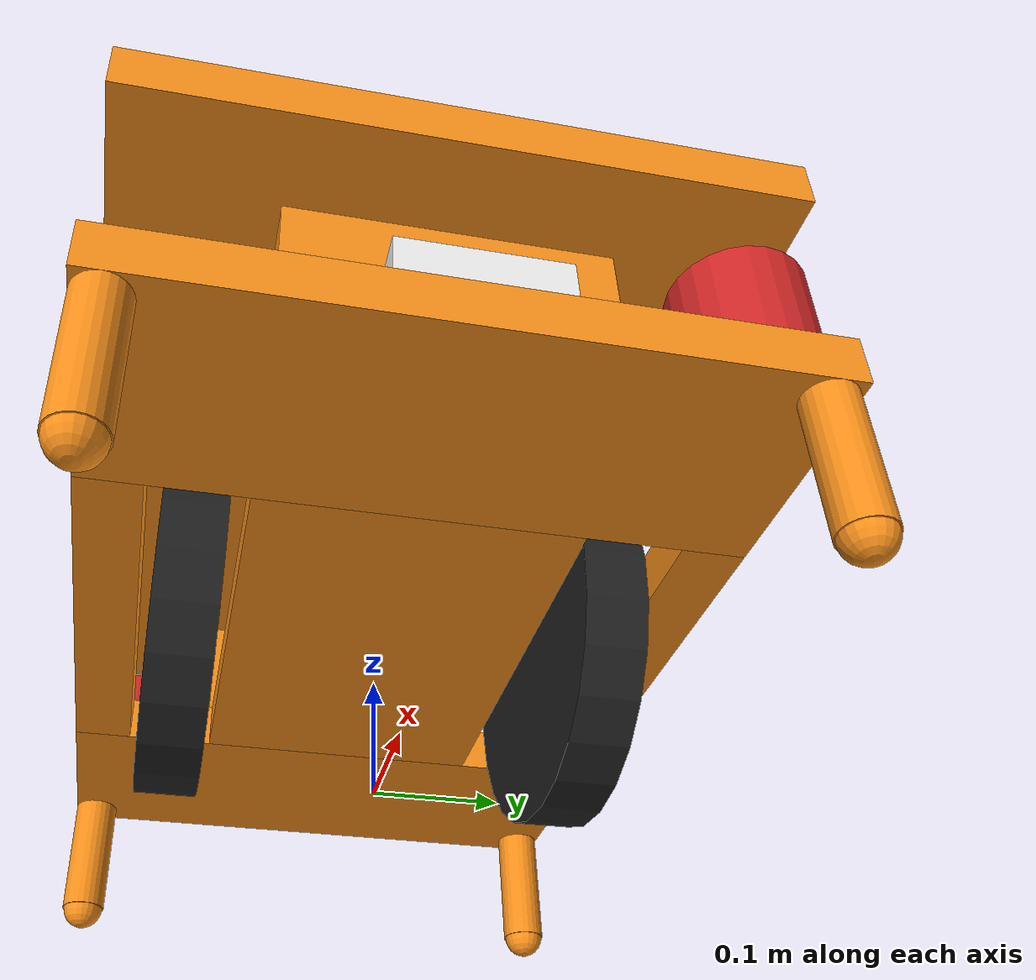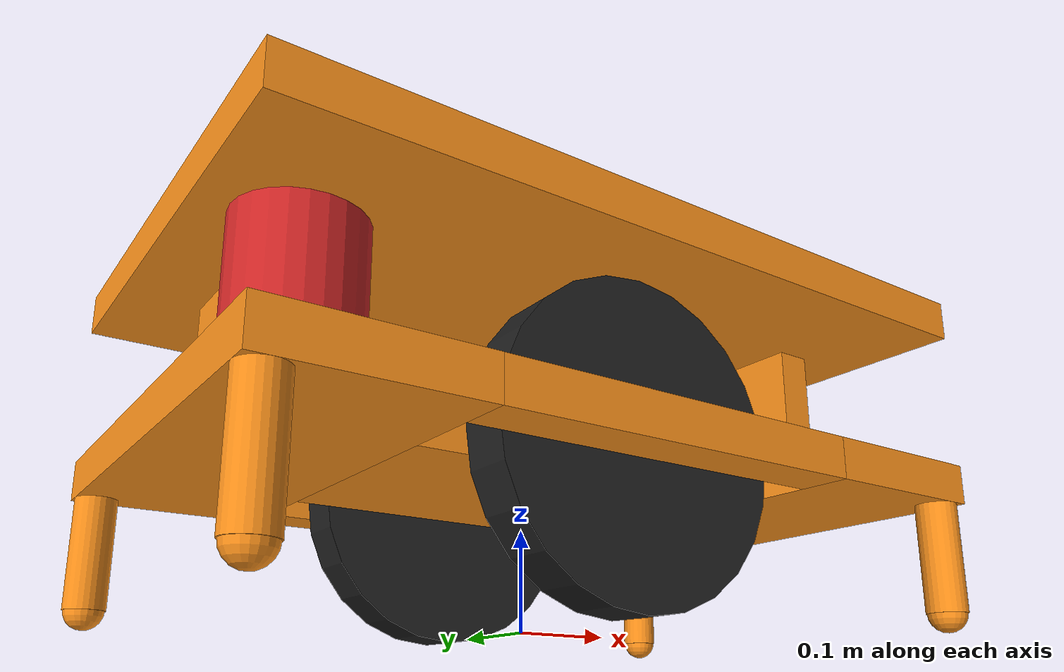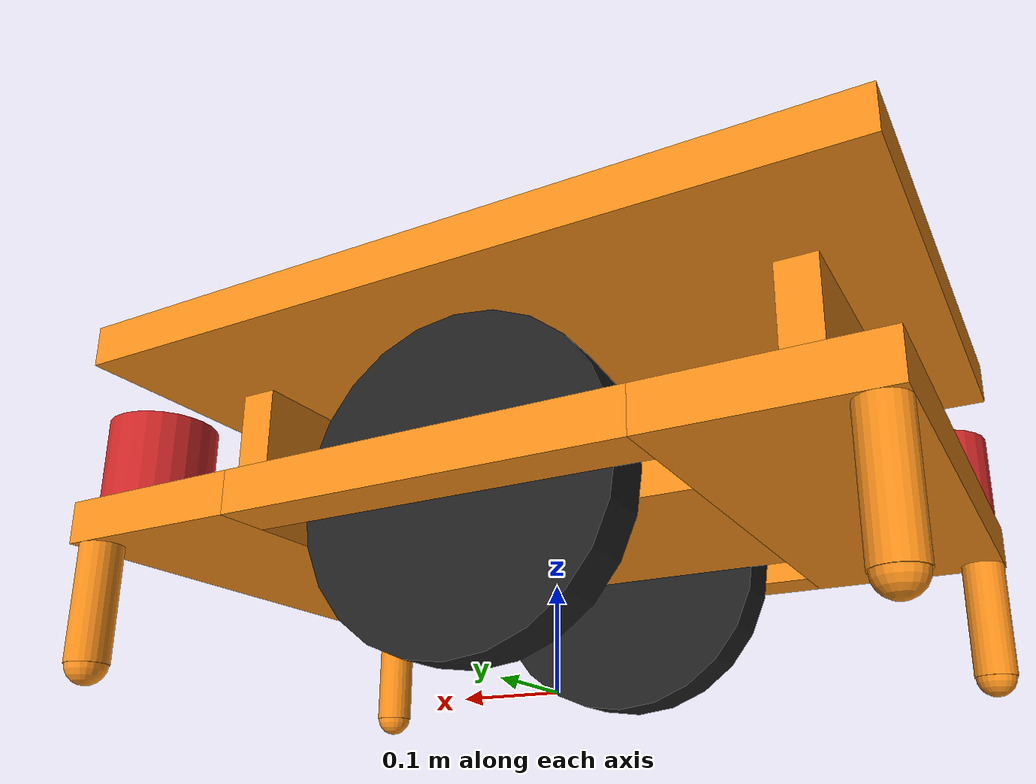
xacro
<?xml version="1.0"?>
<robot name="amr" xmlns:xacro="http://www.ros.org/wiki/xacro">

    <!-- Constants for robot dimensions -->
    <xacro:property name="PI" value="3.1415926535897931"/>
    <xacro:property name="chassis_x" value="0.75" /> <!-- length=0.75 meters -->
    <xacro:property name="chassis_y" value="0.5" /> <!-- width=0.5 meters -->
    <xacro:property name="chassis_z" value="0.4" /> <!-- height=0.4 meters-->
    <xacro:property name="caster_rad" value="0.02" />
    <xacro:property name="chassis_mass" value="100" />

    <xacro:property name="wheel_rad" value="0.15" />
    <xacro:property name="wheel_len" value="0.05" />
    <xacro:property name="wheel_mass" value="2" />

    <xacro:property name="lidar_rad" value="0.05" />
    <xacro:property name="lidar_len" value="0.08" />

    <xacro:property name="camera_x" value="0.03" />
    <xacro:property name="camera_y" value="0.12" />
    <xacro:property name="camera_z" value="0.03" />

    <!-- Include other xacro files-->
    <xacro:include filename="$(find factorybot)/robot/materials.xacro" />
    <xacro:include filename="$(find factorybot)/robot/amr.gazebo.xarco" />

    <!-- Setup some useful xacro macros-->
    <xacro:macro name="visual_collision_template" params="x y z material *shape">
        <visual>
        <origin xyz="${x} ${y} ${z}" rpy="0 0 0"/>
        <geometry>
            <xacro:insert_block name="shape" />
        </geometry>
        <material name="${material}"/>
        </visual>

        <collision>
        <origin xyz="${x} ${y} ${z}" rpy="0 0 0"/>
        <geometry>
            <xacro:insert_block name="shape" />
        </geometry>
        </collision>
    </xacro:macro>
    <xacro:macro name="wheel_template" params="name x y rad length mass">
        <joint name="chassis_${name}_joint" type="continuous">
            <parent link="chassis"/>
            <child link="${name}"/>
            <origin xyz="${x} ${y} 0.0" rpy="${-PI/2} 0 0"/>
            <axis xyz="0 0 1"/>
        </joint>

        <link name="${name}">
            <xacro:visual_collision_template x="0.0" y="0.0" z="0.0" material="black">
                <cylinder radius="${rad}" length="${length}" />
            </xacro:visual_collision_template>

            <inertial>
            <origin xyz="0 0 0" rpy="0 0 0"/>
            <mass value="${mass}"/>
            <!-- Cylinder: Izz=(1/2)*m*r^2, Ixx=Iyy=(1/12)*m*(3*r^2+h^2)-->
            <inertia ixx="${(1/12)*mass*(3*pow(rad,2)+pow(length,2))}" ixy="0" ixz="0"
                    iyy="${(1/12)*mass*(3*pow(rad,2)+pow(length,2))}" iyz="0"
                    izz="${.5*mass*pow(rad,2)}" />
            </inertial>
        </link>
    </xacro:macro>

    <!-- AMR Description Starts -->
    <link name="amr_CoordSys"/>
    <joint name="base_chassis_joint" type="fixed">
        <parent link="amr_CoordSys"/>
        <child link="chassis"/>
        <origin xyz="0.0 0.0 ${wheel_rad}" rpy="0 0 0"/>
    </joint>

    <!-- AMR Chassis -->
    <link name="chassis">
        <!-- Boxes representing AMR base plate -->
        <xacro:visual_collision_template x="0.0" y="0.0" z="0.0" material="orange">
            <box size="${chassis_x/2} ${chassis_y/2} ${chassis_z/10}"/>
        </xacro:visual_collision_template>
        <xacro:visual_collision_template x="${chassis_x*3/8}" y="0.0" z="0.0" material="orange">
            <box size="${chassis_x/4} ${chassis_y} ${chassis_z/10}"/>
        </xacro:visual_collision_template>
        <xacro:visual_collision_template x="${-chassis_x*3/8}" y="0.0" z="0.0" material="orange">
            <box size="${chassis_x/4} ${chassis_y} ${chassis_z/10}"/>
        </xacro:visual_collision_template>
        <xacro:visual_collision_template x="0.0" y="${(chassis_y-wheel_len)/2}" z="0.0" material="orange">
            <box size="${chassis_x/2} ${wheel_len} ${chassis_z/10}"/>
        </xacro:visual_collision_template>
        <xacro:visual_collision_template x="0.0" y="${-(chassis_y-wheel_len)/2}" z="0.0" material="orange">
            <box size="${chassis_x/2} ${wheel_len} ${chassis_z/10}"/>
        </xacro:visual_collision_template>

        <!-- Boxes representing AMR top plate and its supports-->
        <xacro:visual_collision_template x="${chassis_x*3/8}" y="0.0" z="${chassis_z/4}" material="orange">
            <box size="${chassis_x/20} ${chassis_y/2} ${chassis_z/2}"/>
        </xacro:visual_collision_template>
        <xacro:visual_collision_template x="${-chassis_x*3/8}" y="0.0" z="${chassis_z/4}" material="orange">
            <box size="${chassis_x/20} ${chassis_y/2} ${chassis_z/2}"/>
        </xacro:visual_collision_template>
        <xacro:visual_collision_template x="0.0" y="0.0" z="${wheel_rad+chassis_z/20+(chassis_z-wheel_rad*2)*.1}" material="orange">
            <box size="${chassis_x} ${chassis_y} ${chassis_z/10}"/>
        </xacro:visual_collision_template>

        <!-- Cylinders and spheres representing AMR casters-->
        <xacro:visual_collision_template x="${(chassis_x/2-caster_rad)}" y="${(chassis_y/2-caster_rad)}" z="${-(wheel_rad-caster_rad)/2}" material="orange">
            <cylinder radius="${caster_rad}" length="${wheel_rad-caster_rad}"/>
        </xacro:visual_collision_template>
        <xacro:visual_collision_template x="${(chassis_x/2-caster_rad)}" y="${(chassis_y/2-caster_rad)}" z="${-(wheel_rad-caster_rad)}" material="orange">
            <sphere radius="${caster_rad-.001}"/>
        </xacro:visual_collision_template>
        <xacro:visual_collision_template x="${(chassis_x/2-caster_rad)}" y="${-(chassis_y/2-caster_rad)}" z="${-(wheel_rad-caster_rad)/2}" material="orange">
            <cylinder radius="${caster_rad}" length="${wheel_rad-caster_rad}"/>
        </xacro:visual_collision_template>
        <xacro:visual_collision_template x="${(chassis_x/2-caster_rad)}" y="${-(chassis_y/2-caster_rad)}" z="${-(wheel_rad-caster_rad)}" material="orange">
            <sphere radius="${caster_rad-.001}"/>
        </xacro:visual_collision_template>
        <xacro:visual_collision_template x="${-(chassis_x/2-caster_rad)}" y="${(chassis_y/2-caster_rad)}" z="${-(wheel_rad-caster_rad)/2}" material="orange">
            <cylinder radius="${caster_rad}" length="${wheel_rad-caster_rad}"/>
        </xacro:visual_collision_template>
        <xacro:visual_collision_template x="${-(chassis_x/2-caster_rad)}" y="${(chassis_y/2-caster_rad)}" z="${-(wheel_rad-caster_rad)}" material="orange">
            <sphere radius="${caster_rad-.001}"/>
        </xacro:visual_collision_template>
        <xacro:visual_collision_template x="${-(chassis_x/2-caster_rad)}" y="${-(chassis_y/2-caster_rad)}" z="${-(wheel_rad-caster_rad)/2}" material="orange">
            <cylinder radius="${caster_rad}" length="${wheel_rad-caster_rad}"/>
        </xacro:visual_collision_template>
        <xacro:visual_collision_template x="${-(chassis_x/2-caster_rad)}" y="${-(chassis_y/2-caster_rad)}" z="${-(wheel_rad-caster_rad)}" material="orange">
            <sphere radius="${caster_rad-.001}"/>
        </xacro:visual_collision_template>

        <inertial>
        <origin xyz="0 0 0" rpy="0 0 0"/>
        <mass value="${chassis_mass}"/>
        <!-- Box: Ixx=(1/12)*m*(y^2+z^2), Iyy=(1/12)*m*(x^2+z^2), Izz=(1/12)*m*(x^2+y^2)-->
        <inertia ixx="${(1/12)*chassis_mass*(pow(chassis_y,2)+pow(chassis_z,2))}" ixy="0" ixz="0"
                iyy="${(1/12)*chassis_mass*(pow(chassis_x,2)+pow(chassis_z,2))}" iyz="0"
                izz="${(1/12)*chassis_mass*(pow(chassis_x,2)+pow(chassis_y,2))}" />
        </inertial>
    </link>

    <!-- AMR Wheels -->
    <xacro:wheel_template name="wheelL" x="0" y="${(chassis_y-wheel_len*3.5)/2}" rad="${wheel_rad}" length="${wheel_len}"  mass="${wheel_mass}"/>
    <xacro:wheel_template name="wheelR" x="0" y="${-(chassis_y-wheel_len*3.5)/2}" rad="${wheel_rad}" length="${wheel_len}"  mass="${wheel_mass}"/>

    <!-- AMR Lidar2D Sensor (Top Right) -->
    <joint name="chassis_lidar2D_top_right_joint" type="fixed">
        <parent link="chassis"/>
        <child link="lidar2D_TR"/>
        <origin xyz="${chassis_x/2-lidar_rad} ${chassis_y/2-lidar_rad} ${chassis_z/20+lidar_len/2}" rpy="0 0 0"/>
    </joint>
    <link name="lidar2D_TR">
        <xacro:visual_collision_template x="0.0" y="0.0" z="0.0" material="red">
            <cylinder radius="${lidar_rad}" length="${lidar_len}" />
        </xacro:visual_collision_template>
    </link>

    <!-- AGV Lidar2D Sensor (Bottom Left) -->
    <joint name="chassis_lidar2D_bottom_left_joint" type="fixed">
        <parent link="chassis"/>
        <child link="lidar2D_BL"/>
        <origin xyz="${-(chassis_x/2-lidar_rad)} ${-(chassis_y/2-lidar_rad)} ${chassis_z/20+lidar_len/2}" rpy="0 0 0"/>
    </joint>
    <link name="lidar2D_BL">
        <xacro:visual_collision_template x="0.0" y="0.0" z="0.0" material="red">
            <cylinder radius="${lidar_rad}" length="${lidar_len}" />
        </xacro:visual_collision_template>
    </link>

    <!-- AGV RGBD Camera Sensor -->
    <joint name="chassis_cameraRGBD_joint" type="fixed">
        <parent link="chassis"/>
        <child link="cameraRGBD"/>
        <origin xyz="${chassis_x/2-camera_x/2} 0.0 ${chassis_z/20+camera_z/2}" rpy="0 0 0"/>
    </joint>
    <link name="cameraRGBD">
        <xacro:visual_collision_template x="0.0" y="0.0" z="0.0" material="white">
            <box size="${camera_x} ${camera_y} ${camera_z}"/>
        </xacro:visual_collision_template>
    </link>
    <joint name="cameraRGBD_local_joint" type="fixed">
        <origin xyz="0 0 0" rpy="${-PI/2} 0 ${-PI/2}"/>
        <parent link="cameraRGBD"/>
        <child link="cameraRGBD_local"/>
    </joint>
    <link name="cameraRGBD_local">
    </link>

</robot>
